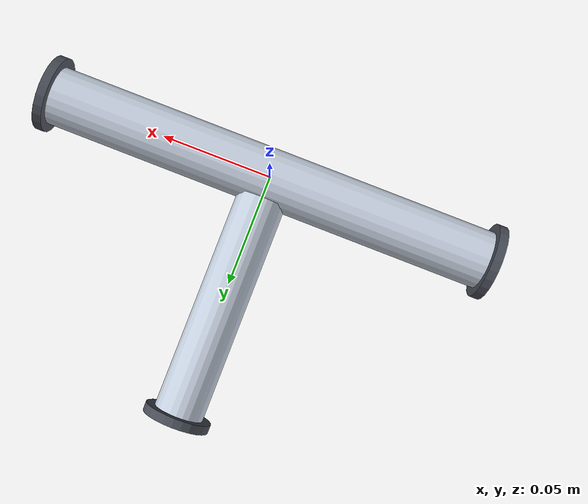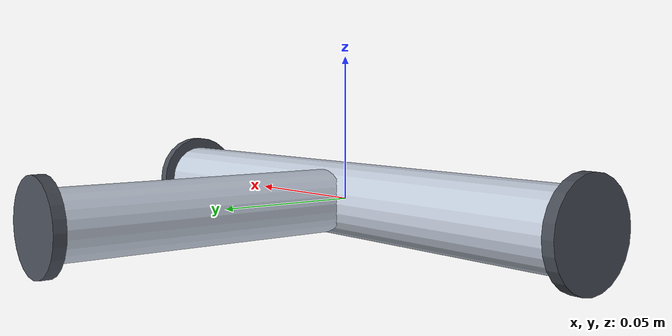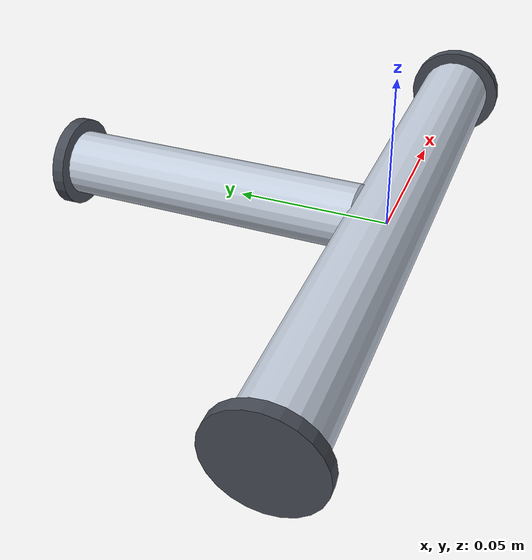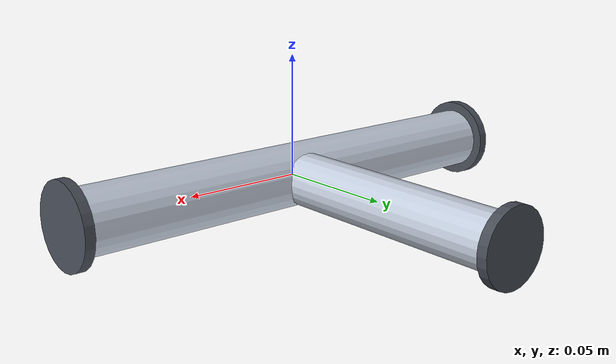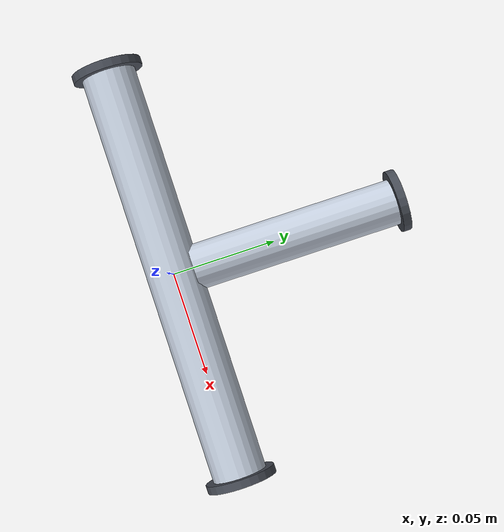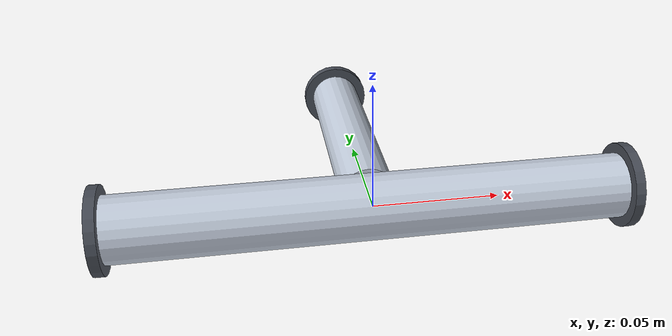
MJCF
<mujoco model="t_handle">

  <option gravity="0 0 0" integrator="RK4" timestep="0.001"/>

  <visual>
    <headlight diffuse="0.55 0.55 0.55" ambient="0.30 0.30 0.30" specular="0.10 0.10 0.10"/>
    <global offwidth="1920" offheight="1080"/>
  </visual>

  <asset>
    <texture name="shield_tex" type="2d"
             file="../images/dc-engineer-logo-transparent.png"/>
    <!-- emission="1" makes the logo self-illuminate, independent of scene lighting -->
    <material name="logo_mat"   texture="shield_tex" texrepeat="1 1" rgba="1 1 1 1"
                                emission="1"/>
    <material name="steel"      rgba="0.78 0.82 0.88 1.00"
                                reflectance="0.92" specular="1.0" shininess="1.00"/>
    <material name="steel_dark" rgba="0.28 0.30 0.34 1.00"
                                reflectance="0.20" shininess="0.15"/>
  </asset>

  <worldbody>

    <!-- DC Engineer shield logo — static backdrop, faces camera at azimuth 135 -->
    <body name="backdrop" pos="-0.21 0.21 -0.15">
      <geom name="logo_panel" type="plane" size="0.42 0.42 0.1"
            euler="90 45 0"
            material="logo_mat" rgba="0 0 0 0" contype="0" conaffinity="0"/>
    </body>

    <body name="t_handle">
      <freejoint name="free"/>

      <geom name="bar"        type="cylinder" fromto="-0.1 0 0  0.1 0 0"    size="0.013" material="steel"      rgba="0.78 0.82 0.88 1" density="7700"/>
      <geom name="bar_cap_l"  type="cylinder" fromto="-0.104 0 0 -0.1 0 0"  size="0.017" material="steel_dark" rgba="0.28 0.30 0.34 1" density="7700"/>
      <geom name="bar_cap_r"  type="cylinder" fromto=" 0.1 0 0  0.104 0 0"  size="0.017" material="steel_dark" rgba="0.28 0.30 0.34 1" density="7700"/>
      <geom name="handle"     type="cylinder" fromto=" 0 0.01 0  0 0.11 0"  size="0.011" material="steel"      rgba="0.78 0.82 0.88 1" density="7700"/>
      <geom name="handle_cap" type="cylinder" fromto=" 0 0.11 0  0 0.114 0" size="0.015" material="steel_dark" rgba="0.28 0.30 0.34 1" density="7700"/>
    </body>

  </worldbody>

</mujoco>
